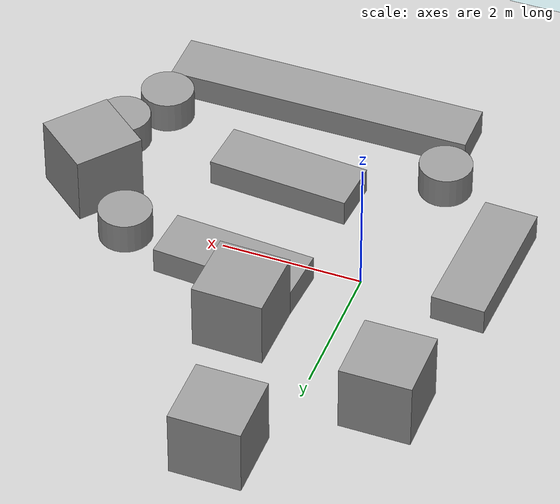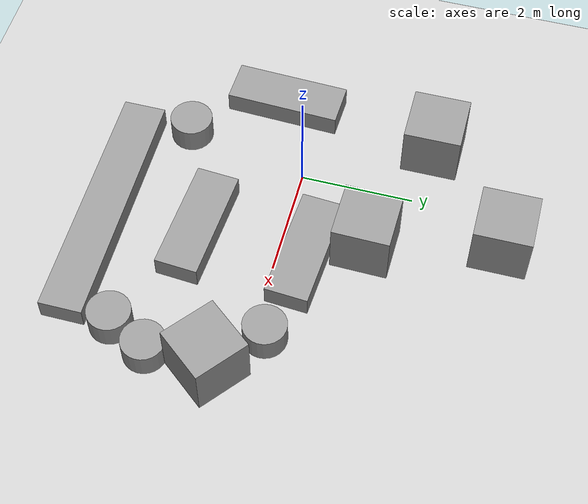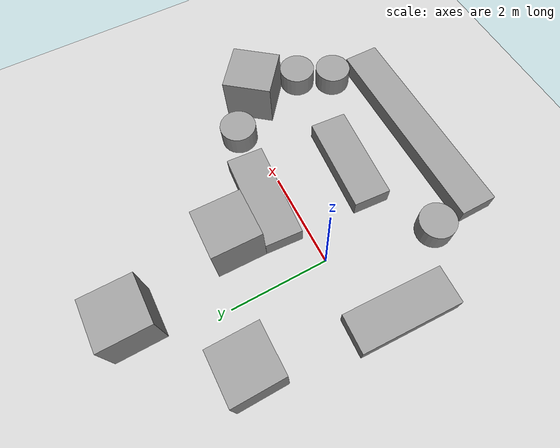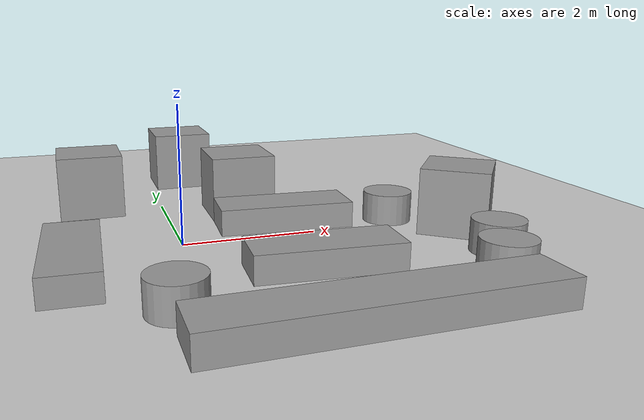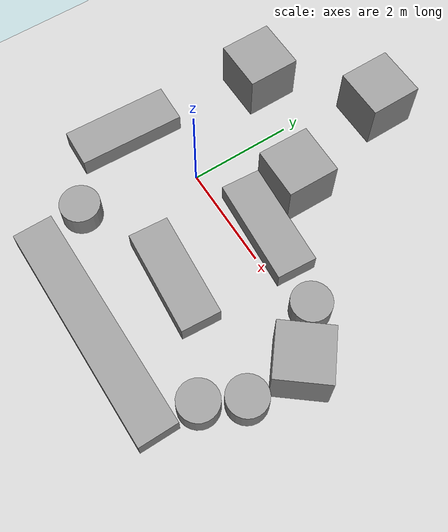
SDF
<sdf version="1.7">
 <world name="default">
  <light name="sun" type="directional">
   <pose>0 0 10 0 -0 0</pose>
   <diffuse>0.8 0.8 0.8 1</diffuse>
   <specular>0.2 0.2 0.2 1</specular>
   <attenuation>
    <range>1000</range>
    <constant>0.9</constant>
    <linear>0.01</linear>
    <quadratic>0.001</quadratic>
   </attenuation>
   <direction>-0.5 0.1 -0.9</direction>
   <spot><inner_angle>0</inner_angle><outer_angle>0</outer_angle><falloff>0</falloff></spot>
  </light>
  <model name="ground_plane">
   <static>1</static>
   <link name="link">
    <collision name="collision">
     <geometry><plane><normal>0 0 1</normal><size>100 100</size></plane></geometry>
     <surface>
      <contact><collide_bitmask>65535</collide_bitmask></contact>
      <friction><ode><mu>100</mu><mu2>50</mu2></ode></friction>
     </surface>
    </collision>
    <visual name="visual">
     <cast_shadows>0</cast_shadows>
     <geometry><plane><normal>0 0 1</normal><size>100 100</size></plane></geometry>
     <material>
      <script><uri>file://media/materials/scripts/gazebo.material</uri><name>Gazebo/Grey</name></script>
     </material>
    </visual>
   </link>
  </model>
  <gravity>0 0 -9.8</gravity>
  <magnetic_field>6e-06 2.3e-05 -4.2e-05</magnetic_field>
  <atmosphere type="adiabatic"/>
  <physics type="ode">
   <max_step_size>0.001</max_step_size>
   <real_time_factor>1</real_time_factor>
   <real_time_update_rate>1000</real_time_update_rate>
  </physics>
  <scene><ambient>0.4 0.4 0.4 1</ambient><background>0.7 0.7 0.7 1</background><shadows>1</shadows></scene>
  <audio><device>default</device></audio>
  <spherical_coordinates>
   <surface_model>EARTH_WGS84</surface_model>
   <latitude_deg>0</latitude_deg>
   <longitude_deg>0</longitude_deg>
   <elevation>0</elevation>
   <heading_deg>0</heading_deg>
  </spherical_coordinates>
  <model name="unit_box">
   <pose>1.17997 1.42237 0.499995 -1e-05 0 -0.017202</pose>
   <link name="link">
    <inertial>
     <mass>1</mass>
     <inertia>
      <ixx>0.166667</ixx>
      <ixy>0</ixy>
      <ixz>0</ixz>
      <iyy>0.166667</iyy>
      <iyz>0</iyz>
      <izz>0.166667</izz>
     </inertia>
    </inertial>
    <collision name="collision"><geometry><box><size>1 1 1</size></box></geometry></collision>
    <visual name="visual">
     <geometry><box><size>1 1 1</size></box></geometry>
     <material>
      <script><name>Gazebo/Grey</name><uri>file://media/materials/scripts/gazebo.material</uri></script>
     </material>
    </visual>
   </link>
  </model>
  <model name="unit_cylinder">
   <pose>3.33802 0.241471 0.234251 -0 -0 -0.05224</pose>
   <link name="link">
    <inertial>
     <mass>1</mass>
     <inertia><ixx>0.145833</ixx><ixy>0</ixy><ixz>0</ixz><iyy>0.145833</iyy><iyz>0</iyz><izz>0.125</izz></inertia>
    </inertial>
    <collision name="collision">
     <geometry><cylinder><radius>0.377192</radius><length>0.468522</length></cylinder></geometry>
    </collision>
    <visual name="visual">
     <geometry><cylinder><radius>0.377192</radius><length>0.468522</length></cylinder></geometry>
     <material>
      <script><name>Gazebo/Grey</name><uri>file://media/materials/scripts/gazebo.material</uri></script>
     </material>
    </visual>
   </link>
  </model>
  <model name="unit_box_0">
   <pose>0.607934 3.68511 0.499995 0 1e-05 0.002417</pose>
   <link name="link">
    <inertial>
     <mass>1</mass>
     <inertia>
      <ixx>0.166667</ixx>
      <ixy>0</ixy>
      <ixz>0</ixz>
      <iyy>0.166667</iyy>
      <iyz>0</iyz>
      <izz>0.166667</izz>
     </inertia>
    </inertial>
    <collision name="collision"><geometry><box><size>1 1 1</size></box></geometry></collision>
    <visual name="visual">
     <geometry><box><size>1 1 1</size></box></geometry>
     <material>
      <script><name>Gazebo/Grey</name><uri>file://media/materials/scripts/gazebo.material</uri></script>
     </material>
    </visual>
   </link>
  </model>
  <model name="unit_box_1">
   <pose>-1.13993 2.14943 0.499995 -1e-05 -0 0.002421</pose>
   <link name="link">
    <inertial>
     <mass>1</mass>
     <inertia>
      <ixx>0.166667</ixx>
      <ixy>0</ixy>
      <ixz>0</ixz>
      <iyy>0.166667</iyy>
      <iyz>0</iyz>
      <izz>0.166667</izz>
     </inertia>
    </inertial>
    <collision name="collision"><geometry><box><size>1 1 1</size></box></geometry></collision>
    <visual name="visual">
     <geometry><box><size>1 1 1</size></box></geometry>
     <material>
      <script><name>Gazebo/Grey</name><uri>file://media/materials/scripts/gazebo.material</uri></script>
     </material>
    </visual>
   </link>
  </model>
  <model name="unit_box_2">
   <pose>-1.52689 -0.677311 0.196348 0 4e-06 -0.039167</pose>
   <link name="link">
    <inertial>
     <mass>1</mass>
     <inertia>
      <ixx>0.166667</ixx>
      <ixy>0</ixy>
      <ixz>0</ixz>
      <iyy>0.166667</iyy>
      <iyz>0</iyz>
      <izz>0.166667</izz>
     </inertia>
    </inertial>
    <collision name="collision"><geometry><box><size>0.758071 2.03593 0.392693</size></box></geometry></collision>
    <visual name="visual">
     <geometry><box><size>0.758071 2.03593 0.392693</size></box></geometry>
     <material>
      <script><name>Gazebo/Grey</name><uri>file://media/materials/scripts/gazebo.material</uri></script>
     </material>
    </visual>
   </link>
  </model>
  <model name="unit_box_2_clone">
   <pose>1.65634 -3.10755 0.19468 0.000755 0 -1.57082</pose>
   <link name="link">
    <inertial>
     <mass>1</mass>
     <inertia>
      <ixx>0.166667</ixx>
      <ixy>0</ixy>
      <ixz>0</ixz>
      <iyy>0.166667</iyy>
      <iyz>0</iyz>
      <izz>0.166667</izz>
     </inertia>
    </inertial>
    <collision name="collision"><geometry><box><size>0.758072 4.41469 0.392693</size></box></geometry></collision>
    <visual name="visual">
     <geometry><box><size>0.758072 4.41469 0.392693</size></box></geometry>
     <material>
      <script><name>Gazebo/Grey</name><uri>file://media/materials/scripts/gazebo.material</uri></script>
     </material>
    </visual>
   </link>
  </model>
  <model name="unit_box_2_clone_clone">
   <pose>1.59403 -1.44676 0.196347 -0 -0 -1.64227</pose>
   <link name="link">
    <inertial>
     <mass>1</mass>
     <inertia>
      <ixx>0.166667</ixx>
      <ixy>0</ixy>
      <ixz>0</ixz>
      <iyy>0.166667</iyy>
      <iyz>0</iyz>
      <izz>0.166667</izz>
     </inertia>
    </inertial>
    <collision name="collision"><geometry><box><size>0.758072 2.03593 0.392693</size></box></geometry></collision>
    <visual name="visual">
     <geometry><box><size>0.758072 2.03593 0.392693</size></box></geometry>
     <material>
      <script><name>Gazebo/Grey</name><uri>file://media/materials/scripts/gazebo.material</uri></script>
     </material>
    </visual>
   </link>
  </model>
  <model name="unit_cylinder_clone">
   <pose>3.74089 -2.29013 0.234261 0 -0 -0.133133</pose>
   <link name="link">
    <inertial>
     <mass>1</mass>
     <inertia><ixx>0.145833</ixx><ixy>0</ixy><ixz>0</ixz><iyy>0.145833</iyy><iyz>0</iyz><izz>0.125</izz></inertia>
    </inertial>
    <collision name="collision">
     <geometry><cylinder><radius>0.377192</radius><length>0.468522</length></cylinder></geometry>
    </collision>
    <visual name="visual">
     <geometry><cylinder><radius>0.377192</radius><length>0.468522</length></cylinder></geometry>
     <material>
      <script><name>Gazebo/Grey</name><uri>file://media/materials/scripts/gazebo.material</uri></script>
     </material>
    </visual>
   </link>
  </model>
  <model name="unit_cylinder_clone_0">
   <pose>4.11018 -1.579 0.234257 -7e-06 7e-06 -0.042185</pose>
   <link name="link">
    <inertial>
     <mass>1</mass>
     <inertia><ixx>0.145833</ixx><ixy>0</ixy><ixz>0</ixz><iyy>0.145833</iyy><iyz>0</iyz><izz>0.125</izz></inertia>
    </inertial>
    <collision name="collision">
     <geometry><cylinder><radius>0.377192</radius><length>0.468522</length></cylinder></geometry>
    </collision>
    <visual name="visual">
     <geometry><cylinder><radius>0.377192</radius><length>0.468522</length></cylinder></geometry>
     <material>
      <script><name>Gazebo/Grey</name><uri>file://media/materials/scripts/gazebo.material</uri></script>
     </material>
    </visual>
   </link>
  </model>
  <model name="unit_cylinder_clone_1">
   <pose>-0.452237 -2.18628 0.234252 0 0 -0.05224</pose>
   <link name="link">
    <inertial>
     <mass>1</mass>
     <inertia><ixx>0.145833</ixx><ixy>0</ixy><ixz>0</ixz><iyy>0.145833</iyy><iyz>0</iyz><izz>0.125</izz></inertia>
    </inertial>
    <collision name="collision">
     <geometry><cylinder><radius>0.377192</radius><length>0.468522</length></cylinder></geometry>
    </collision>
    <visual name="visual">
     <geometry><cylinder><radius>0.377192</radius><length>0.468522</length></cylinder></geometry>
     <material>
      <script><name>Gazebo/Grey</name><uri>file://media/materials/scripts/gazebo.material</uri></script>
     </material>
    </visual>
   </link>
  </model>
  <light name="user_point_light_0" type="point">
   <pose>-0.018928 0.104269 1 0 -0 0</pose>
   <diffuse>0.5 0.5 0.5 1</diffuse>
   <specular>0.1 0.1 0.1 1</specular>
   <attenuation>
    <range>20</range>
    <constant>0.5</constant>
    <linear>0.01</linear>
    <quadratic>0.001</quadratic>
   </attenuation>
   <cast_shadows>0</cast_shadows>
   <direction>0 0 -1</direction>
   <spot><inner_angle>0</inner_angle><outer_angle>0</outer_angle><falloff>0</falloff></spot>
  </light>
  <light name="user_point_light_1" type="point">
   <pose>3.09953 -1.7643 1 0 -0 0</pose>
   <diffuse>0.5 0.5 0.5 1</diffuse>
   <specular>0.1 0.1 0.1 1</specular>
   <attenuation>
    <range>20</range>
    <constant>0.5</constant>
    <linear>0.01</linear>
    <quadratic>0.001</quadratic>
   </attenuation>
   <cast_shadows>0</cast_shadows>
   <direction>0 0 -1</direction>
   <spot><inner_angle>0</inner_angle><outer_angle>0</outer_angle><falloff>0</falloff></spot>
  </light>
  <light name="user_point_light_2" type="point">
   <pose>-2.18153 -1.79787 1 0 -0 0</pose>
   <diffuse>0.5 0.5 0.5 1</diffuse>
   <specular>0.1 0.1 0.1 1</specular>
   <attenuation>
    <range>20</range>
    <constant>0.5</constant>
    <linear>0.01</linear>
    <quadratic>0.001</quadratic>
   </attenuation>
   <cast_shadows>0</cast_shadows>
   <direction>0 0 -1</direction>
   <spot><inner_angle>0</inner_angle><outer_angle>0</outer_angle><falloff>0</falloff></spot>
  </light>
  <model name="unit_box_2_clone_clone_clone">
   <pose>1.66035 0.483068 0.196347 0 0 -1.63945</pose>
   <link name="link">
    <inertial>
     <mass>1</mass>
     <inertia>
      <ixx>0.166667</ixx>
      <ixy>0</ixy>
      <ixz>0</ixz>
      <iyy>0.166667</iyy>
      <iyz>0</iyz>
      <izz>0.166667</izz>
     </inertia>
    </inertial>
    <collision name="collision"><geometry><box><size>0.758072 2.03593 0.392693</size></box></geometry></collision>
    <visual name="visual">
     <geometry><box><size>0.758072 2.03593 0.392693</size></box></geometry>
     <material>
      <script><name>Gazebo/Grey</name><uri>file://media/materials/scripts/gazebo.material</uri></script>
     </material>
    </visual>
   </link>
  </model>
  <model name="unit_box_clone">
   <pose>4.1222 -0.509013 0.5 0 -0 -0.674795</pose>
   <link name="link">
    <inertial>
     <mass>1</mass>
     <inertia>
      <ixx>0.166667</ixx>
      <ixy>0</ixy>
      <ixz>0</ixz>
      <iyy>0.166667</iyy>
      <iyz>0</iyz>
      <izz>0.166667</izz>
     </inertia>
    </inertial>
    <collision name="collision"><geometry><box><size>1 1 1</size></box></geometry></collision>
    <visual name="visual">
     <geometry><box><size>1 1 1</size></box></geometry>
     <material>
      <script><name>Gazebo/Grey</name><uri>file://media/materials/scripts/gazebo.material</uri></script>
     </material>
    </visual>
   </link>
  </model>
 </world>
</sdf>
